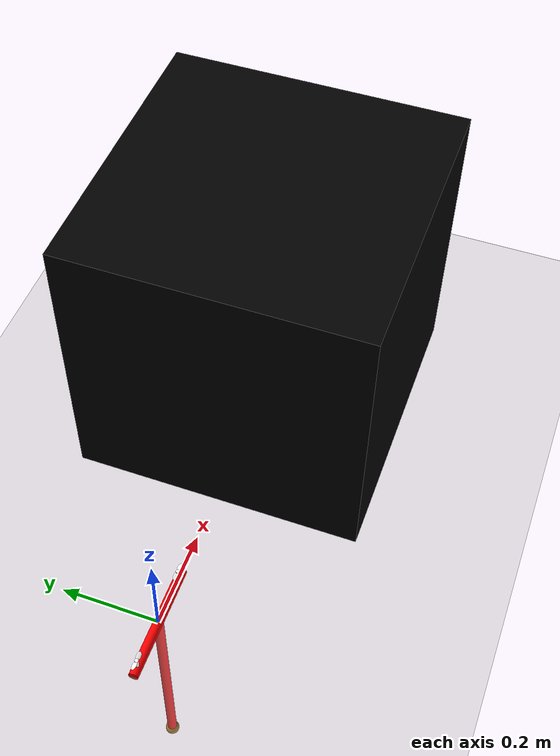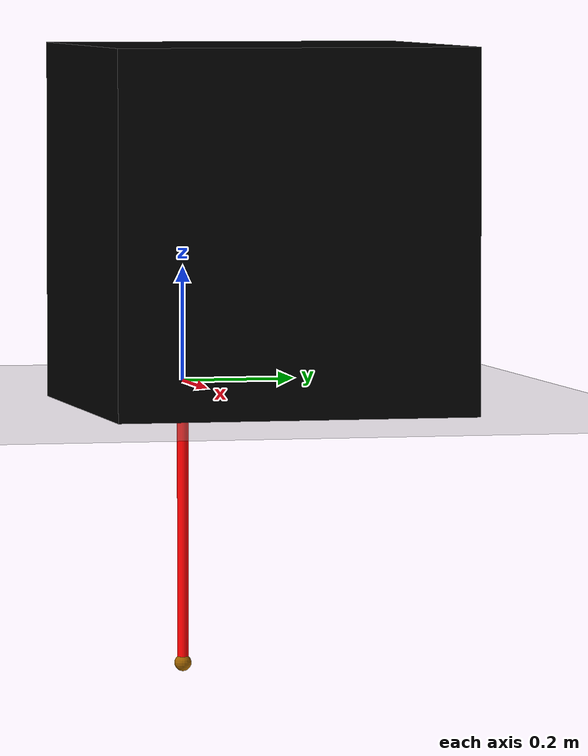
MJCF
<mujoco>

    <visual>
        <global offwidth = "1280" offheight = "720"/>
    </visual>
    <compiler angle = "degree"/>
    <option>
        <flag gravity = "enable" contact = "enable"/>

    </option>

    <option timestep = ".002"/>

    <asset>
        <texture name="grid" type="2d" builtin="checker" rgb1=".1 .2 .3"
            rgb2=".2 .3 .4" width="300" height="300" mark="none"/>
        <material name="grid" texture="grid" texrepeat="1 1"
            texuniform="true" reflectance="0"/>
        <texture type="skybox" builtin="flat" rgb1=".3 .5 .7" rgb2="0 0 0" width="32" height="512"/>
    </asset>

    <worldbody>
        <!-- rgba(168, 168, 168, 1) -->
        <geom name="floor" type="plane"  size="6 6 .1" rgba = ".659 .659 .659 1" friction = "0.8 .0005 0.001"/>

        <geom name = "obstacle" type = "box" size = ".3 .3 .3" pos = ".6 0 .3" rgba = "0 0 0 1"/>

        <body name = "prop_bar" gravcomp = "0">
            <freejoint name = "prop_free_joint"/>
            <geom name = "propeller_body" type = "cylinder" size = ".01 .12" zaxis = "1 0 0" mass = "1" rgba = "1 0 0 1" friction = "0 0 0"/>

            <site name = "IMU_1_loc" pos = "0 0 0" size = ".001 .001 .001"/>
            <site name = "prop_1" pos = "-.1 0 0" size = ".001 .001 .001"/>
            <site name = "prop_2" pos = ".1 0 0" size = ".001 .001 .001"/>
            <site name = "GPS_loc" pos = ".02 0 0" size = ".001 .001 .001"/>

            <!-- rgba(255, 255, 255, 1) -->
            <site name = "propeller_1" fromto = "-.1 0 0 -.1 0 .03" rgba = "1 1 1 1" type = "cylinder" size = ".004"/>
            <site name = "propeller_2" fromto = ".1 0 0 .1 0 .03" rgba = "1 1 1 1" type = "cylinder" size = ".004"/>

            <site name = "fan_1_a" rgba = "1 1 1 1" type = "ellipsoid" size = ".01 .005 .001" pos = "-.09 0 .028" axisangle = "1 0 0 20"/>
            <site name = "fan_1_b" rgba = "1 1 1 1" type = "ellipsoid" size = ".01 .005 .001" pos = "-.11 0 .028" axisangle = "-1 0 0 20"/>

            <site name = "fan_2_a" rgba = "1 1 1 1" type = "ellipsoid" size = ".01 .005 .001" pos = ".09 0 .028" axisangle = "1 0 0 20"/>
            <site name = "fan_2_b" rgba = "1 1 1 1" type = "ellipsoid" size = ".01 .005 .001" pos = ".11 0 .028" axisangle = "-1 0 0 20"/>

            <body name = "leg_1"  gravcomp = "0">
                <joint name = "leg_1_joint" type = "hinge" axis = "0 1 0" pos = "0 0 0" damping = ".2"/>

                <geom name = "leg_1_stick" type = "capsule" fromto = "0 0 0 0 0 -.5" size = ".01" mass = "1" friction = "0.2 000 0" rgba = "1 0 0 1"/>
                <site name = "IMU_2_loc" pos = "0 0 -0.25" size = ".001 .001 .001"/>

                <!-- rgba(159, 99, 0, 1) -->
                <site name = "feet" type = "sphere" size = ".015" pos = "0 0 -.5" rgba = "0.6235 .388 0 1"/>
            </body>
        </body>

    </worldbody>

    <actuator>
        <motor name = "propeller1" site = "prop_1" gear = "0 0 1 0 0 0"/>
        <motor name = "propeller2" site = "prop_2" gear = "0 0 1 0 0 0"/>
    </actuator>

    <sensor>
        <accelerometer name = "IMU_1_acc" site = "IMU_1_loc" noise = ".01"/>
        <gyro name = "IMU_1_gyro" site = "IMU_1_loc" noise = ".01"/>

        <accelerometer name = "IMU_2_acc" site = "IMU_2_loc" noise = ".01"/>
        <gyro name = "IMU_2_gyro" site = "IMU_2_loc" noise = ".01"/>

        <touch name = "feet_touch_sensor" site = "feet"/>
        <framepos name = "gps" objtype = "site" objname = "GPS_loc" noise = ".05"/>
        <framelinvel name = "gps_vel" objtype = "site" objname = "GPS_loc" noise = ".005"/>
    </sensor>

</mujoco>
